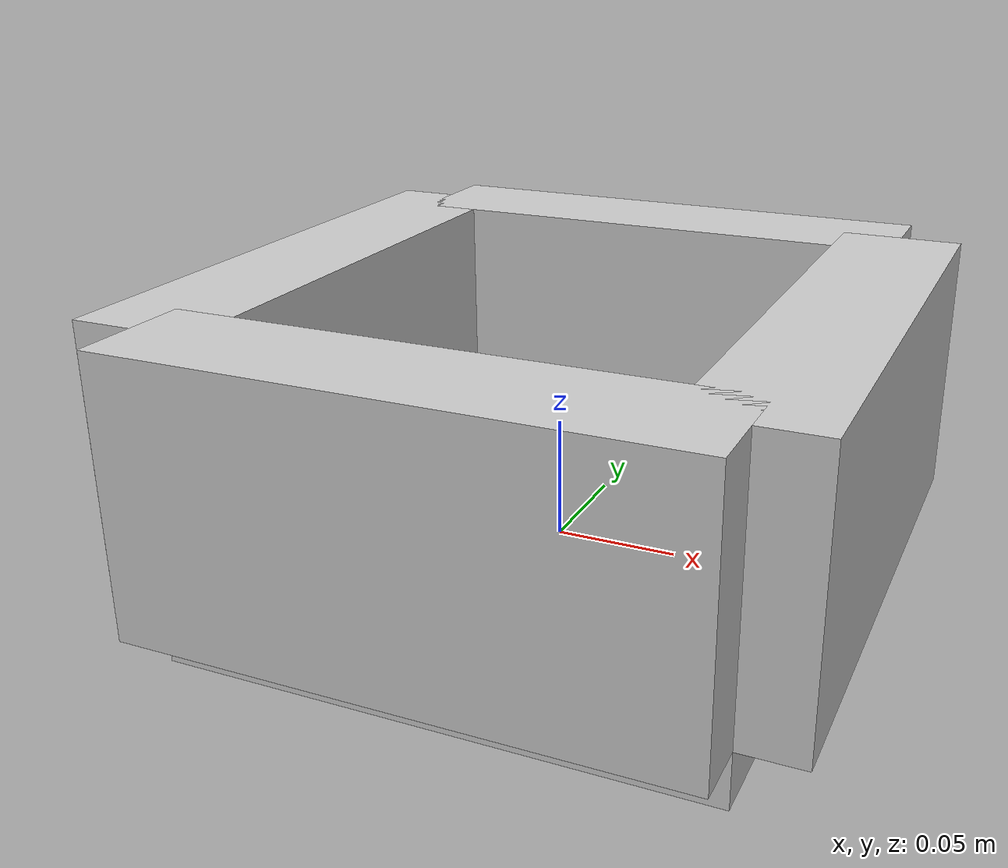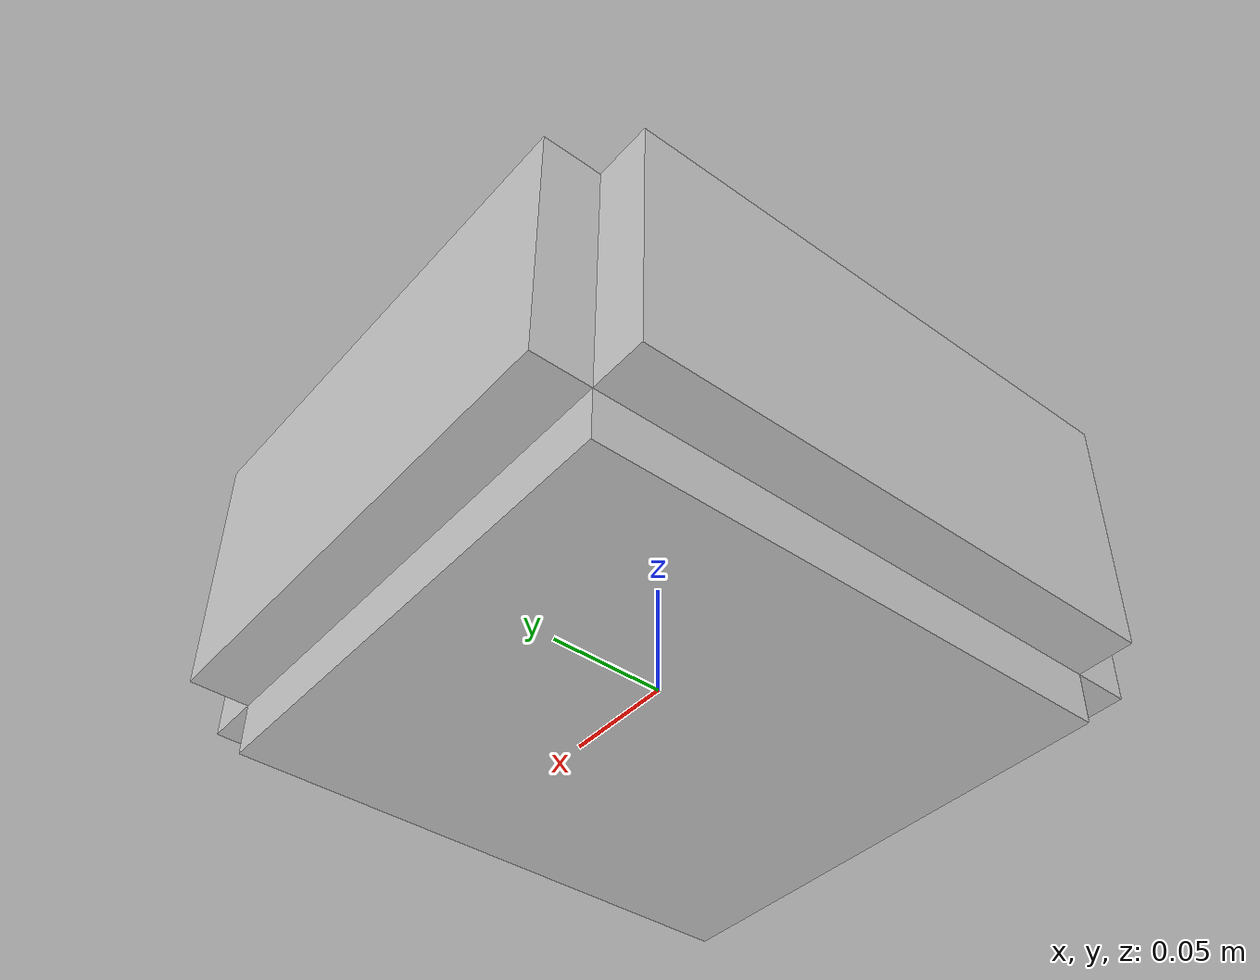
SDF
<?xml version="1.0"?>
<sdf version="1.6">
  <model name="cardboard_box">
    <link name="1_link">
      <collision name="1_col">
        <geometry>
          <box>
            <size>0.22 0.235 0.05</size>
          </box>
        </geometry>
      </collision>
      <visual name="1_vis">
        <geometry>
          <box>
            <size>0.22 0.235 0.05</size>
          </box>
        </geometry>
        <material>
          <ambient>0.8 0.8 0.8 1</ambient>
        </material>
      </visual>
      <pose>0 0 0.0025 0 0 0</pose>
    </link>
    <link name="2_link">
      <collision name="2_col">
        <geometry>
          <box>
            <size>0.22 0.05 0.11</size>
          </box>
        </geometry>
      </collision>
      <visual name="2_vis">
        <geometry>
          <box>
            <size>0.22 0.05 0.11</size>
          </box>
        </geometry>
        <material>
          <ambient>0.8 0.8 0.8 1</ambient>
        </material>
      </visual>
      <pose>0 -0.1175 0.055 0 0 0</pose>
    </link>
    <link name="3_link">
      <collision name="3_col">
        <geometry>
          <box>
            <size>0.22 0.05 0.11</size>
          </box>
        </geometry>
      </collision>
      <visual name="3_vis">
        <geometry>
          <box>
            <size>0.22 0.05 0.11</size>
          </box>
        </geometry>
        <material>
          <ambient>0.8 0.8 0.8 1</ambient>
        </material>
      </visual>
      <pose>0 0.1175 0.055 0 0 0</pose>
    </link>
    <link name="4_link">
      <collision name="4_col">
        <geometry>
          <box>
            <size>0.05 0.235 0.11</size>
          </box>
        </geometry>
      </collision>
      <visual name="4_vis">
        <geometry>
          <box>
            <size>0.05 0.235 0.11</size>
          </box>
        </geometry>
        <material>
          <ambient>0.8 0.8 0.8 1</ambient>
        </material>
      </visual>
      <pose>-0.11 0 0.055 0 0 0</pose>
    </link>
    <link name="5_link">
      <collision name="5_col">
        <geometry>
          <box>
            <size>0.05 0.235 0.11</size>
          </box>
        </geometry>
      </collision>
      <visual name="5_vis">
        <geometry>
          <box>
            <size>0.05 0.235 0.11</size>
          </box>
        </geometry>
        <material>
          <ambient>0.8 0.8 0.8 1</ambient>
        </material>
      </visual>
      <pose>0.11 0 0.055 0 0 0</pose>
    </link>
    <link name="on_top_of">
      <virtual_volume name="on_top_of_vv">
        <geometry>
          <box>
            <size>0.22 0.235 0.4</size>
          </box>
        </geometry>
        <pose>0.0 0.0 0.42 0 0 0</pose>
      </virtual_volume>
    </link>
    <link name="in">
      <virtual_volume name="in_vv">
        <geometry>
          <box>
            <size>0.22 0.235 0.22</size>
          </box>
        </geometry>
        <pose>0.0 0.0 0.11 0 0 0</pose>
      </virtual_volume>
    </link>
    <link name="wall1">
      <virtual_volume name="wall1_vv">
        <geometry>
          <box>
            <size>0.22 0.05 0.11</size>
          </box>
        </geometry>
        <pose>0 0.1175 0.055 0 0 0</pose>
      </virtual_volume>
    </link>
    <static>true</static>
  </model>
</sdf>
